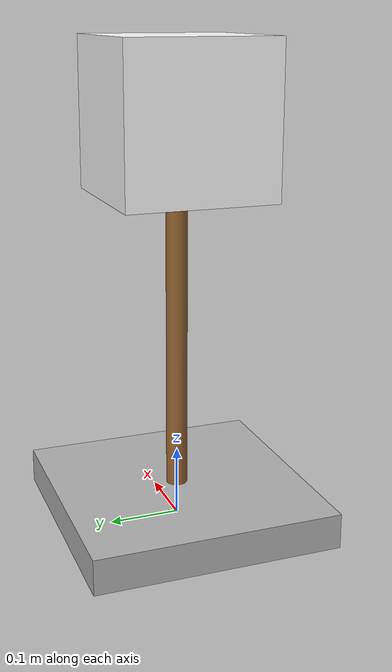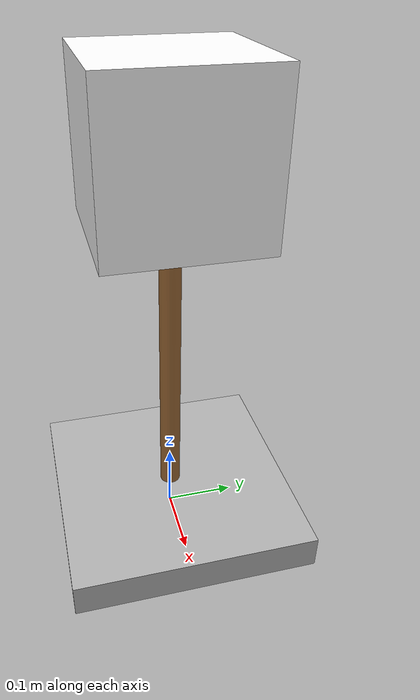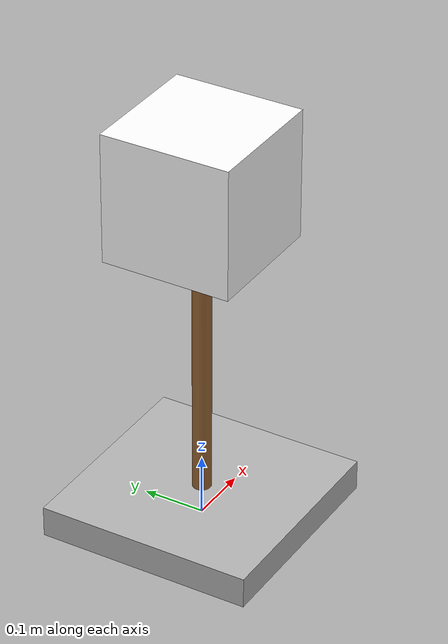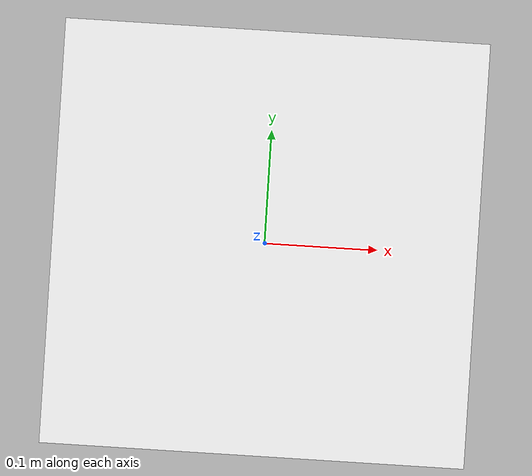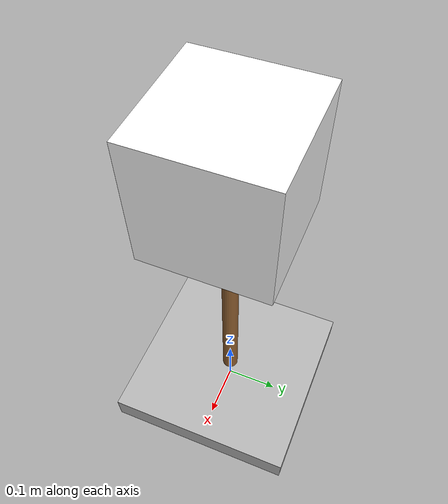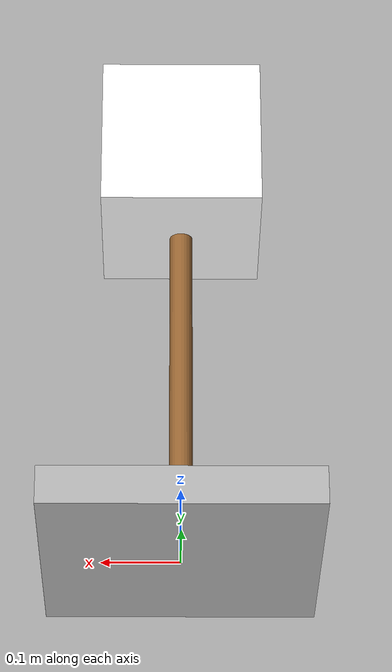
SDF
<?xml version="1.0" ?>
<sdf version="1.9">
  <model name="aruco_15">
    <static>true</static>
    <link name="link">
      <!-- Concrete Base -->
      <visual name="base_visual">
        <pose>0 0 0.025 0 0 0</pose>
        <geometry>
          <box>
            <size>0.35 0.35 0.05</size>
          </box>
        </geometry>
        <material>
          <ambient>0.7 0.7 0.7 1</ambient>
          <diffuse>0.7 0.7 0.7 1</diffuse>
        </material>
      </visual>
      <collision name="base_collision">
        <pose>0 0 0.025 0 0 0</pose>
        <geometry>
          <box>
            <size>0.35 0.35 0.05</size>
          </box>
        </geometry>
      </collision>

      <!-- Wooden Pole -->
      <visual name="pole_visual">
        <pose>0 0 0.26 0 0 0</pose>
        <geometry>
          <cylinder>
            <radius>0.015</radius>
            <length>0.42</length>
          </cylinder>
        </geometry>
        <material>
          <ambient>0.6 0.4 0.2 1</ambient>
          <diffuse>0.6 0.4 0.2 1</diffuse>
        </material>
      </visual>
      <collision name="pole_collision">
        <pose>0 0 0.26 0 0 0</pose>
        <geometry>
          <cylinder>
            <radius>0.015</radius>
            <length>0.42</length>
          </cylinder>
        </geometry>
      </collision>

      <!-- Head Box with ArUco Texture -->
      <visual name="head_visual">
        <pose>0 0 0.575 0 0 0</pose>
        <geometry>
          <box>
            <size>0.21 0.21 0.21</size>
          </box>
        </geometry>
        <material>
          <ambient>1 1 1 1</ambient>
          <diffuse>1 1 1 1</diffuse>
          <pbr>
            <metal>
              <albedo_map>model://aruco_15/materials/textures/marker_15.png</albedo_map>
            </metal>
          </pbr>
        </material>
      </visual>
      <collision name="head_collision">
        <pose>0 0 0.575 0 0 0</pose>
        <geometry>
          <box>
            <size>0.21 0.21 0.21</size>
          </box>
        </geometry>
      </collision>
    </link>
  </model>
</sdf>
